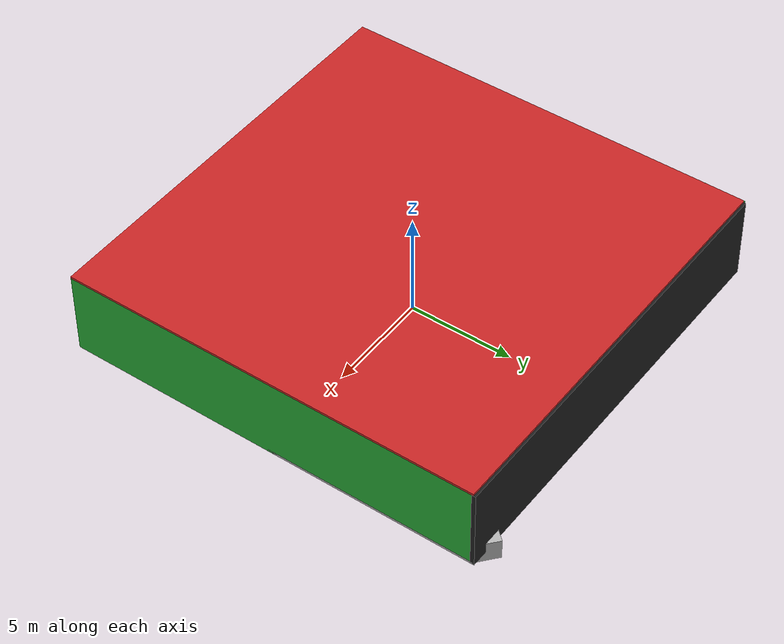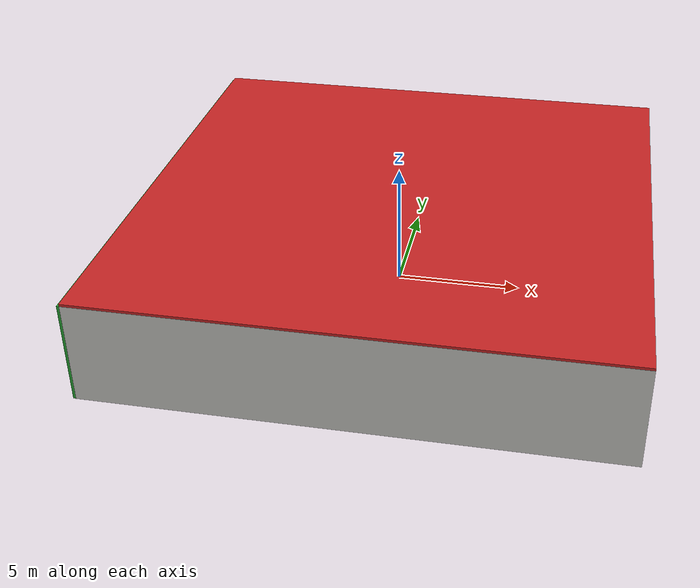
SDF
<sdf version="1.4">
 <world name="default">
  <physics type="ode">
   <max_step_size>0.001</max_step_size>
   <real_time_factor>1</real_time_factor>
   <real_time_update_rate>1000</real_time_update_rate>
   <gravity>0 0 -9.8</gravity>
  </physics>
  <scene><ambient>0.4 0.4 0.4 1</ambient><background>0.7 0.7 0.7 1</background><shadows>1</shadows></scene>
  <model name="Surrounding">
   <static>1</static>
   <link name="Ceiling">
    <collision name="Ceiling_Collision"><geometry><box><size>20 20 0.1</size></box></geometry></collision>
    <visual name="Ceiling_Visual">
     <geometry><box><size>20 20 0.1</size></box></geometry>
     <material>
      <script><uri>file://media/materials/scripts/gazebo.material</uri><name>Gazebo/Red</name></script>
     </material>
    </visual>
    <pose>0 0 4.05 0 0 0</pose>
   </link>
   <link name="Wall_South">
    <collision name="Wall_South_Collision">
     <geometry><box><size>20 0 4</size></box></geometry>
     <pose>0 0 2 0 -0 0</pose>
    </collision>
    <visual name="Wall_South_Visual">
     <pose>0 0 2 0 -0 0</pose>
     <geometry><box><size>20 0 4</size></box></geometry>
     <material>
      <script><uri>file://media/materials/scripts/gazebo.material</uri><name>Gazebo/CeilingTiled</name></script>
     </material>
    </visual>
    <velocity_decay><linear>0</linear><angular>0</angular></velocity_decay>
    <pose>0 -10 0 0 -0 0</pose>
   </link>
   <link name="Wall_East">
    <collision name="Wall_21_Collision">
     <geometry><box><size>20 0 4</size></box></geometry>
     <pose>0 0 2 0 -0 0</pose>
    </collision>
    <visual name="Wall_21_Visual">
     <pose>0 0 2 0 -0 0</pose>
     <geometry><box><size>20 0 4</size></box></geometry>
     <material>
      <script><uri>file://media/materials/scripts/gazebo.material</uri><name>Gazebo/GreenGlow</name></script>
     </material>
    </visual>
    <velocity_decay><linear>0</linear><angular>0</angular></velocity_decay>
    <pose>10 0 0 0 -0 1.5708</pose>
   </link>
   <link name="Wall_North">
    <collision name="Wall_22_Collision">
     <geometry><box><size>20 0.2 4</size></box></geometry>
     <pose>0 0 2 0 -0 0</pose>
    </collision>
    <visual name="Wall_22_Visual">
     <pose>0 0 2 0 -0 0</pose>
     <geometry><box><size>20 0.2 4</size></box></geometry>
     <material>
      <script><uri>file://media/materials/scripts/gazebo.material</uri><name>Gazebo/Black</name></script>
     </material>
    </visual>
    <velocity_decay><linear>0</linear><angular>0</angular></velocity_decay>
    <pose>0 10 0 0 -0 0</pose>
   </link>
   <link name="Wall_West">
    <collision name="Wall_23_Collision">
     <geometry><box><size>20 0.2 4</size></box></geometry>
     <pose>0 0 2 0 -0 0</pose>
    </collision>
    <visual name="Wall_23_Visual">
     <pose>0 0 2 0 -0 0</pose>
     <geometry><box><size>20 0.2 4</size></box></geometry>
     <material>
      <script><uri>file://media/materials/scripts/gazebo.material</uri><name>Gazebo/Green</name></script>
     </material>
    </visual>
    <velocity_decay><linear>0</linear><angular>0</angular></velocity_decay>
    <pose>-10 0 0 0 0 -1.5708</pose>
   </link>
   <link name="Ground_link">
    <collision name="collision">
     <pose>0 0 .05 0 -0 0</pose>
     <geometry><box><size>20 20 0.1</size></box></geometry>
    </collision>
    <visual name="visual">
     <pose>0 0 .05 0 -0 0</pose>
     <geometry><box><size>20 20 0.1</size></box></geometry>
     <material>
      <script><uri>file://media/materials/scripts/gazebo.material</uri><name>Gazebo/Pioneer2Body</name></script>
     </material>
    </visual>
   </link>
   <static>1</static>
  </model>
  <spherical_coordinates>
   <surface_model>EARTH_WGS84</surface_model>
   <latitude_deg>0</latitude_deg>
   <longitude_deg>0</longitude_deg>
   <elevation>0</elevation>
   <heading_deg>0</heading_deg>
  </spherical_coordinates>
  <light name="lightball_0" type="diffuse">
   <diffuse>0.8 0.8 0.8 1</diffuse>
   <specular>0.2 0.2 0.2 1</specular>
   <attenuation>
    <range>100</range>
    <constant>0.7</constant>
    <linear>0.01</linear>
    <quadratic>0.001</quadratic>
   </attenuation>
   <direction>-0.5 0.1 -0.9</direction>
   <pose>1.94278942652 1.57252052969 2.57585302618 0 0 0</pose>
  </light>
  <light name="lightball_1" type="diffuse">
   <diffuse>0.8 0.8 0.8 1</diffuse>
   <specular>0.2 0.2 0.2 1</specular>
   <attenuation>
    <range>100</range>
    <constant>0.7</constant>
    <linear>0.01</linear>
    <quadratic>0.001</quadratic>
   </attenuation>
   <direction>-0.5 0.1 -0.9</direction>
   <pose>5.51837483154 -7.17603363277 3.27711695753 0 0 0</pose>
  </light>
  <light name="lightball_2" type="diffuse">
   <diffuse>0.8 0.8 0.8 1</diffuse>
   <specular>0.2 0.2 0.2 1</specular>
   <attenuation>
    <range>100</range>
    <constant>0.7</constant>
    <linear>0.01</linear>
    <quadratic>0.001</quadratic>
   </attenuation>
   <direction>-0.5 0.1 -0.9</direction>
   <pose>-5.10186479414 2.60390411175 2.60775047603 0 0 0</pose>
  </light>
  <light name="lightball_3" type="diffuse">
   <diffuse>0.8 0.8 0.8 1</diffuse>
   <specular>0.2 0.2 0.2 1</specular>
   <attenuation>
    <range>100</range>
    <constant>0.7</constant>
    <linear>0.01</linear>
    <quadratic>0.001</quadratic>
   </attenuation>
   <direction>-0.5 0.1 -0.9</direction>
   <pose>-6.97207389477 -6.04790513649 2.24961562168 0 0 0</pose>
  </light>
  <light name="lightball_4" type="diffuse">
   <diffuse>0.8 0.8 0.8 1</diffuse>
   <specular>0.2 0.2 0.2 1</specular>
   <attenuation>
    <range>100</range>
    <constant>0.7</constant>
    <linear>0.01</linear>
    <quadratic>0.001</quadratic>
   </attenuation>
   <direction>-0.5 0.1 -0.9</direction>
   <pose>1.24579791593 4.28592732214 1.42592877315 0 0 0</pose>
  </light>
  <light name="lightball_5" type="diffuse">
   <diffuse>0.8 0.8 0.8 1</diffuse>
   <specular>0.2 0.2 0.2 1</specular>
   <attenuation>
    <range>100</range>
    <constant>0.7</constant>
    <linear>0.01</linear>
    <quadratic>0.001</quadratic>
   </attenuation>
   <direction>-0.5 0.1 -0.9</direction>
   <pose>7.676881218 7.93943378555 0.730158185839 0 0 0</pose>
  </light>
  <light name="lightball_6" type="diffuse">
   <diffuse>0.8 0.8 0.8 1</diffuse>
   <specular>0.2 0.2 0.2 1</specular>
   <attenuation>
    <range>100</range>
    <constant>0.7</constant>
    <linear>0.01</linear>
    <quadratic>0.001</quadratic>
   </attenuation>
   <direction>-0.5 0.1 -0.9</direction>
   <pose>-1.87479379785 0.970013362659 3.49344762275 0 0 0</pose>
  </light>
  <light name="lightball_7" type="diffuse">
   <diffuse>0.8 0.8 0.8 1</diffuse>
   <specular>0.2 0.2 0.2 1</specular>
   <attenuation>
    <range>100</range>
    <constant>0.7</constant>
    <linear>0.01</linear>
    <quadratic>0.001</quadratic>
   </attenuation>
   <direction>-0.5 0.1 -0.9</direction>
   <pose>-6.63655453406 -5.20635266099 2.30247475673 0 0 0</pose>
  </light>
  <light name="lightball_8" type="diffuse">
   <diffuse>0.8 0.8 0.8 1</diffuse>
   <specular>0.2 0.2 0.2 1</specular>
   <attenuation>
    <range>100</range>
    <constant>0.7</constant>
    <linear>0.01</linear>
    <quadratic>0.001</quadratic>
   </attenuation>
   <direction>-0.5 0.1 -0.9</direction>
   <pose>-8.55049934159 8.70200560003 3.55290953736 0 0 0</pose>
  </light>
  <light name="lightball_9" type="diffuse">
   <diffuse>0.8 0.8 0.8 1</diffuse>
   <specular>0.2 0.2 0.2 1</specular>
   <attenuation>
    <range>100</range>
    <constant>0.7</constant>
    <linear>0.01</linear>
    <quadratic>0.001</quadratic>
   </attenuation>
   <direction>-0.5 0.1 -0.9</direction>
   <pose>4.43392859994 4.37218176169 3.1913883562 0 0 0</pose>
  </light>
  <light name="lightball_10" type="diffuse">
   <diffuse>0.8 0.8 0.8 1</diffuse>
   <specular>0.2 0.2 0.2 1</specular>
   <attenuation>
    <range>100</range>
    <constant>0.7</constant>
    <linear>0.01</linear>
    <quadratic>0.001</quadratic>
   </attenuation>
   <direction>-0.5 0.1 -0.9</direction>
   <pose>7.74363741375 -0.642007531163 3.65414767482 0 0 0</pose>
  </light>
  <light name="lightball_11" type="diffuse">
   <diffuse>0.8 0.8 0.8 1</diffuse>
   <specular>0.2 0.2 0.2 1</specular>
   <attenuation>
    <range>100</range>
    <constant>0.7</constant>
    <linear>0.01</linear>
    <quadratic>0.001</quadratic>
   </attenuation>
   <direction>-0.5 0.1 -0.9</direction>
   <pose>0.920272781039 -8.40713119806 1.49632688263 0 0 0</pose>
  </light>
  <include><uri>model://cabinet</uri><pose>-7.31229801771 4.32533806792 0 0 0 0.779131893889</pose></include>
  <include>
   <uri>model://robocup_3Dsim_goal</uri>
   <pose>-1.99537612651 -7.1158184302 0 0 0 0.87622429476</pose>
  </include>
  <include><uri>model://cabinet</uri><pose>-2.30863168102 1.33320573907 0 0 0 0.0611211908024</pose></include>
  <include>
   <uri>model://construction_cone</uri>
   <pose>1.75545739856 -0.579649175925 0 0 0 2.72404046984</pose>
  </include>
  <include><uri>model://table</uri><pose>4.28880548453 7.86715553051 0 0 0 3.06806411702</pose></include>
  <include>
   <uri>model://textured_shapes</uri>
   <pose>7.79363867539 8.67754009869 0 0 0 2.43804441335</pose>
  </include>
 </world>
</sdf>

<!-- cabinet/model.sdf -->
<sdf version="1.5">
  <model name="cabinet">
    <static>true</static>
    <link name="cabinet_bottom_plate">
      <inertial>
        <pose>0 0 -1 0 0 0</pose>
        <inertia>
          <ixx>2.050000</ixx>
          <ixy>0</ixy>
          <ixz>0</ixz>
          <iyy>2.050000</iyy>
          <iyz>0</iyz>
          <izz>2.050000</izz>
        </inertia>
        <mass>25.000000</mass>
      </inertial>
      <collision name="cabinet_bottom_plate_geom">
        <pose>0 0 0.010000 0 0 0</pose>
        <geometry>
          <box>
            <size>0.450000 0.450000 0.020000</size>
          </box>
        </geometry>
      </collision>
      <visual name="cabinet_bottom_plate_geom_visual">
        <pose>0 0 0.010000 0 0 0</pose>
        <geometry>
          <box>
            <size>0.450000 0.450000 0.020000</size>
          </box>
        </geometry>
        <material>
          <script>
            <uri>model://media/materials/scripts/gazebo.material</uri>
            <name>Gazebo/Wood</name>
          </script>
        </material>
      </visual>
      <collision name="cabinet_bottom_plate_geom_cabinet_back_plate">
        <pose>0.235000 0 0.510000 0 0 0</pose>
        <geometry>
          <box>
            <size>0.020000 0.450000 1.020000</size>
          </box>
        </geometry>
      </collision>
      <visual name="cabinet_bottom_plate_geom_cabinet_back_plate_visual">
        <pose>0.235000 0 0.510000 0 0 0</pose>
        <geometry>
          <box>
            <size>0.020000 0.450000 1.020000</size>
          </box>
        </geometry>
        <material>
          <script>
            <uri>model://media/materials/scripts/gazebo.material</uri>
            <name>Gazebo/Wood</name>
          </script>
        </material>
      </visual>
      <collision name="cabinet_bottom_plate_geom_cabinet_left_plate">
        <pose>0 0.235000 0.510000 0 0 0</pose>
        <geometry>
          <box>
            <size>0.450000 0.020000 1.020000</size>
          </box>
        </geometry>
      </collision>
      <visual name="cabinet_bottom_plate_geom_cabinet_left_plate_visual">
        <pose>0 0.235000 0.510000 0 0 0</pose>
        <geometry>
          <box>
            <size>0.450000 0.020000 1.020000</size>
          </box>
        </geometry>
        <material>
          <script>
            <uri>model://media/materials/scripts/gazebo.material</uri>
            <name>Gazebo/Wood</name>
          </script>
        </material>
      </visual>
      <collision name="cabinet_bottom_plate_geom_cabinet_middle_plate">
        <pose>0 0 0.510000 0 0 0</pose>
        <geometry>
          <box>
            <size>0.450000 0.450000 0.020000</size>
          </box>
        </geometry>
      </collision>
      <visual name="cabinet_bottom_plate_geom_cabinet_middle_plate_visual">
        <pose>0 0 0.510000 0 0 0</pose>
        <geometry>
          <box>
            <size>0.450000 0.450000 0.020000</size>
          </box>
        </geometry>
        <material>
          <script>
            <uri>model://media/materials/scripts/gazebo.material</uri>
            <name>Gazebo/Wood</name>
          </script>
        </material>
      </visual>
      <collision name="cabinet_bottom_plate_geom_cabinet_right_plate">
        <pose>0 -0.235000 0.510000 0 0 0</pose>
        <geometry>
          <box>
            <size>0.450000 0.020000 1.020000</size>
          </box>
        </geometry>
      </collision>
      <visual name="cabinet_bottom_plate_geom_cabinet_right_plate_visual">
        <pose>0 -0.235000 0.510000 0 0 0</pose>
        <geometry>
          <box>
            <size>0.450000 0.020000 1.020000</size>
          </box>
        </geometry>
        <material>
          <script>
            <uri>model://media/materials/scripts/gazebo.material</uri>
            <name>Gazebo/Wood</name>
          </script>
        </material>
      </visual>
      <collision name="cabinet_bottom_plate_geom_cabinet_top_plate">
        <pose>0 0 1.010000 0 0 0</pose>
        <geometry>
          <box>
            <size>0.450000 0.450000 0.020000</size>
          </box>
        </geometry>
      </collision>
      <visual name="cabinet_bottom_plate_geom_cabinet_top_plate_visual">
        <pose>0 0 1.010000 0 0 0</pose>
        <geometry>
          <box>
            <size>0.450000 0.450000 0.020000</size>
          </box>
        </geometry>
        <material>
          <script>
            <uri>model://media/materials/scripts/gazebo.material</uri>
            <name>Gazebo/Wood</name>
          </script>
        </material>
      </visual>
    </link>
  </model>
</sdf>

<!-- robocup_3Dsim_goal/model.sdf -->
<sdf version="1.5">
  <model name="robocup_3d_goal">
    <static>true</static>
    <link name="left_post">
      <pose>0 1.05 0.45 0 0 0</pose>
      <collision name="collision">
        <geometry>
          <cylinder>
            <radius>0.05</radius>
            <length>0.9</length>
          </cylinder>
        </geometry>
      </collision>
      <visual name="visual">
        <geometry>
          <cylinder>
            <radius>0.05</radius>
            <length>0.9</length>
          </cylinder>
        </geometry>
        <material>
          <script>
            <uri>file://media/materials/scripts/gazebo.material</uri>
            <name>Gazebo/ZincYellow</name>
          </script>
        </material>
      </visual>
    </link>
    <link name="left_support_horiz_lower">
      <pose>0.30 1.05 0.01 0 0 0</pose>
      <collision name="collision">
        <geometry>
          <box>
            <size>0.50 0.02 0.02</size>
          </box>
        </geometry>
      </collision>
      <visual name="visual">
        <geometry>
          <box>
            <size>0.50 0.02 0.02</size>
          </box>
        </geometry>
        <material>
          <script>
            <uri>file://media/materials/scripts/gazebo.material</uri>
            <name>Gazebo/White</name>
          </script>
        </material>
      </visual>
    </link>
    <link name="left_support_horiz_upper">
      <pose>0.30 1.05 0.79 0 0 0</pose>
      <collision name="collision">
        <geometry>
          <box>
            <size>0.50 0.02 0.02</size>
          </box>
        </geometry>
      </collision>
      <visual name="visual">
        <geometry>
          <box>
            <size>0.50 0.02 0.02</size>
          </box>
        </geometry>
        <material>
          <script>
            <uri>file://media/materials/scripts/gazebo.material</uri>
            <name>Gazebo/White</name>
          </script>
        </material>
      </visual>
    </link>
    <link name="left_support_vertical">
      <pose>0.56 1.05 0.4 0 1.5708 0</pose>
      <collision name="collision">
        <geometry>
          <box>
            <size>0.80 0.02 0.02</size>
          </box>
        </geometry>
      </collision>
      <visual name="visual">
        <geometry>
          <box>
            <size>0.80 0.02 0.02</size>
          </box>
        </geometry>
        <material>
          <script>
            <uri>file://media/materials/scripts/gazebo.material</uri>
            <name>Gazebo/White</name>
          </script>
        </material>
      </visual>
    </link>
    <link name="right_support_horiz_lower">
      <pose>0.30 -1.05 0.01 0 0 0</pose>
      <collision name="collision">
        <geometry>
          <box>
            <size>0.50 0.02 0.02</size>
          </box>
        </geometry>
      </collision>
      <visual name="visual">
        <geometry>
          <box>
            <size>0.50 0.02 0.02</size>
          </box>
        </geometry>
        <material>
          <script>
            <uri>file://media/materials/scripts/gazebo.material</uri>
            <name>Gazebo/White</name>
          </script>
        </material>
      </visual>
    </link>
    <link name="right_support_horiz_upper">
      <pose>0.30 -1.05 0.79 0 0 0</pose>
      <collision name="collision">
        <geometry>
          <box>
            <size>0.50 0.02 0.02</size>
          </box>
        </geometry>
      </collision>
      <visual name="visual">
        <geometry>
          <box>
            <size>0.50 0.02 0.02</size>
          </box>
        </geometry>
        <material>
          <script>
            <uri>file://media/materials/scripts/gazebo.material</uri>
            <name>Gazebo/White</name>
          </script>
        </material>
      </visual>
    </link>
    <link name="right_support_vertical">
      <pose>0.56 -1.05 0.4 0 1.5708 0</pose>
      <collision name="collision">
        <geometry>
          <box>
            <size>0.80 0.02 0.02</size>
          </box>
        </geometry>
      </collision>
      <visual name="visual">
        <geometry>
          <box>
            <size>0.80 0.02 0.02</size>
          </box>
        </geometry>
        <material>
          <script>
            <uri>file://media/materials/scripts/gazebo.material</uri>
            <name>Gazebo/White</name>
          </script>
        </material>
      </visual>
    </link>
    <link name="center_support_horiz_lower">
      <pose>0.56 0 0.01 0 1.5708 0</pose>
      <collision name="collision">
        <geometry>
          <box>
            <size>0.02 2.08 0.02</size>
          </box>
        </geometry>
      </collision>
      <visual name="visual">
        <geometry>
          <box>
            <size>0.02 2.08 0.02</size>
          </box>
        </geometry>
        <material>
          <script>
            <uri>file://media/materials/scripts/gazebo.material</uri>
            <name>Gazebo/White</name>
          </script>
        </material>
      </visual>
    </link>
    <link name="center_support_horiz_upper">
      <pose>0.56 0 0.79 0 1.5708 0</pose>
      <collision name="collision">
        <geometry>
          <box>
            <size>0.02 2.08 0.02</size>
          </box>
        </geometry>
      </collision>
      <visual name="visual">
        <geometry>
          <box>
            <size>0.02 2.08 0.02</size>
          </box>
        </geometry>
        <material>
          <script>
            <uri>file://media/materials/scripts/gazebo.material</uri>
            <name>Gazebo/White</name>
          </script>
        </material>
      </visual>
    </link>
    <link name="right_post">
      <pose>0 -1.05 0.45 0 0 0</pose>
      <collision name="collision">
        <geometry>
          <cylinder>
            <radius>0.05</radius>
            <length>0.9</length>
          </cylinder>
        </geometry>
      </collision>
      <visual name="visual">
        <geometry>
          <cylinder>
            <radius>0.05</radius>
            <length>0.9</length>
          </cylinder>
        </geometry>
        <material>
          <script>
            <uri>file://media/materials/scripts/gazebo.material</uri>
            <name>Gazebo/ZincYellow</name>
          </script>
        </material>
      </visual>
    </link>
    <link name="crossbar">
      <pose>0 0 0.85 1.57 1.57 0</pose>
      <collision name="collision">
        <geometry>
          <cylinder>
            <radius>0.05</radius>
            <length>2.0</length>
          </cylinder>
        </geometry>
      </collision>
      <visual name="visual">
        <geometry>
          <cylinder>
            <radius>0.05</radius>
            <length>2.0</length>
          </cylinder>
        </geometry>
        <material>
          <script>
            <uri>file://media/materials/scripts/gazebo.material</uri>
            <name>Gazebo/ZincYellow</name>
          </script>
        </material>
      </visual>
    </link>
    <link name="center_net">
      <pose>0.56 0 0.40 0 0 0</pose>
      <collision name="collision">
        <geometry>
          <box>
            <size>0.01 2.1 0.80</size>
          </box>
        </geometry>
      </collision>
      <visual name="visual">
        <geometry>
          <box>
            <size>0.01 2.1 0.80</size>
          </box>
        </geometry>
        <material>
          <script>
            <uri>model://../model_source/models/robocup09_spl_field/materials/scripts/</uri>
            <uri>model://../model_source/models/robocup09_spl_field/materials/textures/</uri>
            <name>RoboCup/Net</name>
          </script>
        </material>
      </visual>
    </link>
    <link name="left_net">
      <pose>0.30 1.05 0.40 0 0 0</pose>
      <collision name="collision">
        <geometry>
          <box>
            <size>0.50 0.01 0.76</size>
          </box>
        </geometry>
      </collision>
      <visual name="visual">
        <geometry>
          <box>
            <size>0.50 0.01 0.76</size>
          </box>
        </geometry>
        <material>
          <script>
            <uri>model://../model_source/models/robocup09_spl_field/materials/scripts/</uri>
            <uri>model://../model_source/models/robocup09_spl_field/materials/textures/</uri>
            <name>RoboCup/Net</name>
          </script>
        </material>
      </visual>
    </link>
    <link name="right_net">
      <pose>0.30 -1.05 0.40 0 0 0</pose>
      <collision name="collision">
        <geometry>
          <box>
            <size>0.50 0.01 0.76</size>
          </box>
        </geometry>
      </collision>
      <visual name="visual">
        <geometry>
          <box>
            <size>0.50 0.01 0.76</size>
          </box>
        </geometry>
        <material>
          <script>
            <uri>model://../model_source/models/robocup09_spl_field/materials/scripts/</uri>
            <uri>model://../model_source/models/robocup09_spl_field/materials/textures/</uri>
            <name>RoboCup/Net</name>
          </script>
        </material>
      </visual>
    </link>
  </model>
</sdf>

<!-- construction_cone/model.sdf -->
<sdf version="1.5">
  <model name="Construction Cone">
    <link name="link">
      <collision name="collision">
        <geometry>
          <mesh>
            <scale>10 10 10</scale>
            <uri>file://isr-testbed/construction_cone/meshes/construction_cone.dae</uri>
          </mesh>
        </geometry>
      </collision>
      <visual name="visual">
        <geometry>
          <mesh>
            <scale>10 10 10</scale>
            <uri>file://isr-testbed/construction_cone/meshes/construction_cone.dae</uri>
          </mesh>
        </geometry>
      </visual>
    </link>
  </model>
</sdf>

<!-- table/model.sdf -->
<sdf version="1.5">
  <model name="table">
    <static>true</static>
    <link name="link">
      <collision name="surface">
        <pose>0 0 1.0 0 0 0</pose>
        <geometry>
          <box>
            <size>1.5 0.8 0.03</size>
          </box>
        </geometry>
        <surface>
          <friction>
            <ode>
              <mu>0.6</mu>
              <mu2>0.6</mu2>
            </ode>
          </friction>
        </surface>
      </collision>
      <visual name="visual1">
        <pose>0 0 1.0 0 0 0</pose>
        <geometry>
          <box>
            <size>1.5 0.8 0.03</size>
          </box>
        </geometry>
        <material>
          <script>
            <uri>model://media/materials/scripts/gazebo.material</uri>
            <name>Gazebo/Wood</name>
          </script>
        </material>
      </visual>
      <collision name="front_left_leg">
        <pose>0.68 0.38 0.5 0 0 0</pose>
        <geometry>
          <cylinder>
            <radius>0.02</radius>
            <length>1.0</length>
          </cylinder>
        </geometry>
      </collision>
      <visual name="front_left_leg">
        <pose>0.68 0.38 0.5 0 0 0</pose>
        <geometry>
          <cylinder>
            <radius>0.02</radius>
            <length>1.0</length>
          </cylinder>
        </geometry>
        <material>
          <script>
            <uri>model://media/materials/scripts/gazebo.material</uri>
            <name>Gazebo/Grey</name>
          </script>
        </material>
      </visual>
      <collision name="front_right_leg">
        <pose>0.68 -0.38 0.5 0 0 0</pose>
        <geometry>
          <cylinder>
            <radius>0.02</radius>
            <length>1.0</length>
          </cylinder>
        </geometry>
      </collision>
      <visual name="front_right_leg">
        <pose>0.68 -0.38 0.5 0 0 0</pose>
        <geometry>
          <cylinder>
            <radius>0.02</radius>
            <length>1.0</length>
          </cylinder>
        </geometry>
        <material>
          <script>
            <uri>model://media/materials/scripts/gazebo.material</uri>
            <name>Gazebo/Grey</name>
          </script>
        </material>
      </visual>
      <collision name="back_right_leg">
        <pose>-0.68 -0.38 0.5 0 0 0</pose>
        <geometry>
          <cylinder>
            <radius>0.02</radius>
            <length>1.0</length>
          </cylinder>
        </geometry>
      </collision>
      <visual name="back_right_leg">
        <pose>-0.68 -0.38 0.5 0 0 0</pose>
        <geometry>
          <cylinder>
            <radius>0.02</radius>
            <length>1.0</length>
          </cylinder>
        </geometry>
        <material>
          <script>
            <uri>model://media/materials/scripts/gazebo.material</uri>
            <name>Gazebo/Grey</name>
          </script>
        </material>
      </visual>
      <collision name="back_left_leg">
        <pose>-0.68 0.38 0.5 0 0 0</pose>
        <geometry>
          <cylinder>
            <radius>0.02</radius>
            <length>1.0</length>
          </cylinder>
        </geometry>
      </collision>
      <visual name="back_left_leg">
        <pose>-0.68 0.38 0.5 0 0 0</pose>
        <geometry>
          <cylinder>
            <radius>0.02</radius>
            <length>1.0</length>
          </cylinder>
        </geometry>
        <material>
          <script>
            <uri>model://media/materials/scripts/gazebo.material</uri>
            <name>Gazebo/Grey</name>
          </script>
        </material>
      </visual>
    </link>
  </model>
</sdf>

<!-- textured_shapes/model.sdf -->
<sdf version="1.6">
  <model name="textured_shapes">
    <pose>0 0 0.5 0 0 0</pose>
    <link name="box">
      <pose>0 -1.5 0 0 0 0</pose>
      <collision name="collision">
        <geometry>
          <box>
            <size>1 1 1</size>
          </box>
        </geometry>
      </collision>
      <visual name="visual">
        <geometry>
          <box>
            <size>1 1 1</size>
          </box>
        </geometry>
        <material>
          <script>
            <uri>model://../model_source/models/textured_shapes/materials/scripts</uri>
            <uri>model://../model_source/models/textured_shapes/materials/textures</uri>
            <name>TexturedShape/Squares</name>
          </script>
        </material>
      </visual>
    </link>
    <link name="sphere">
      <collision name="collision">
        <geometry>
          <sphere>
            <radius>0.5</radius>
          </sphere>
        </geometry>
      </collision>
      <visual name="visual">
        <geometry>
          <sphere>
            <radius>0.5</radius>
          </sphere>
        </geometry>
        <material>
          <script>
            <uri>model://../model_source/models/textured_shapes/materials/scripts</uri>
            <uri>model://../model_source/models/textured_shapes/materials/textures</uri>
            <name>TexturedShape/Squares</name>
          </script>
        </material>
      </visual>
    </link>
    <link name="cylinder">
      <pose>0 1.5 0 0 0 0</pose>
      <collision name="collision">
        <geometry>
          <cylinder>
            <radius>0.5</radius>
            <length>1</length>
          </cylinder>
        </geometry>
      </collision>
      <visual name="visual">
        <geometry>
          <cylinder>
            <radius>0.5</radius>
            <length>1</length>
          </cylinder>
        </geometry>
        <material>
          <script>
            <uri>model://../model_source/models/textured_shapes/materials/scripts</uri>
            <uri>model://../model_source/models/textured_shapes/materials/textures</uri>
            <name>TexturedShape/Squares</name>
          </script>
        </material>
      </visual>
    </link>
  </model>
</sdf>
